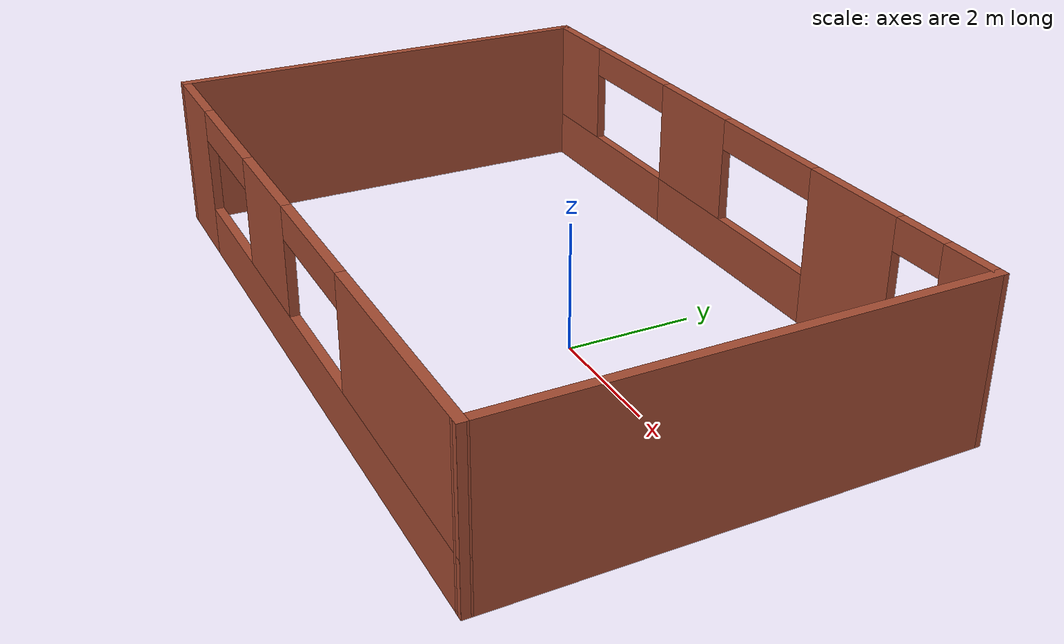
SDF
<?xml version='1.0'?>
<sdf version='1.6'>
  <model name='classroom'>
    <pose frame=''>-1.194 -0.073 0 0 -0 0</pose>
    <link name='Wall_1'>
      <pose frame=''>0.0155 -3.594 0 0 -0 0</pose>
      <visual name='Wall_1_Visual_0'>
        <pose frame=''>-4.96887 0 1.25 0 -0 0</pose>
        <geometry>
          <box>
            <size>1.5749 0.15 2.5</size>
          </box>
        </geometry>
        <material>
          <script>
            <uri>file://media/materials/scripts/gazebo.material</uri>
            <name>Gazebo/Bricks</name>
          </script>
          <ambient>1 1 1 1</ambient>
        </material>
        <meta>
          <layer>0</layer>
        </meta>
      </visual>
      <collision name='Wall_1_Collision_0'>
        <geometry>
          <box>
            <size>1.5749 0.15 2.5</size>
          </box>
        </geometry>
        <pose frame=''>-4.96887 0 1.25 0 -0 0</pose>
      </collision>
      <visual name='Wall_1_Visual_1'>
        <pose frame=''>0.787451 0 0.4 0 -0 0</pose>
        <geometry>
          <box>
            <size>9.93773 0.15 0.8</size>
          </box>
        </geometry>
        <material>
          <script>
            <uri>file://media/materials/scripts/gazebo.material</uri>
            <name>Gazebo/Bricks</name>
          </script>
          <ambient>1 1 1 1</ambient>
        </material>
        <meta>
          <layer>0</layer>
        </meta>
      </visual>
      <collision name='Wall_1_Collision_1'>
        <geometry>
          <box>
            <size>9.93773 0.15 0.8</size>
          </box>
        </geometry>
        <pose frame=''>0.787451 0 0.4 0 -0 0</pose>
      </collision>
      <visual name='Wall_1_Visual_2'>
        <pose frame=''>-1.04716 0 1.65 0 -0 0</pose>
        <geometry>
          <box>
            <size>1.8685 0.15 1.7</size>
          </box>
        </geometry>
        <material>
          <script>
            <uri>file://media/materials/scripts/gazebo.material</uri>
            <name>Gazebo/Bricks</name>
          </script>
          <ambient>1 1 1 1</ambient>
        </material>
        <meta>
          <layer>0</layer>
        </meta>
      </visual>
      <collision name='Wall_1_Collision_2'>
        <geometry>
          <box>
            <size>1.8685 0.15 1.7</size>
          </box>
        </geometry>
        <pose frame=''>-1.04716 0 1.65 0 -0 0</pose>
      </collision>
      <visual name='Wall_1_Visual_3'>
        <pose frame=''>3.9217 0 1.65 0 -0 0</pose>
        <geometry>
          <box>
            <size>3.66923 0.15 1.7</size>
          </box>
        </geometry>
        <material>
          <script>
            <uri>file://media/materials/scripts/gazebo.material</uri>
            <name>Gazebo/Bricks</name>
          </script>
          <ambient>1 1 1 1</ambient>
        </material>
        <meta>
          <layer>0</layer>
        </meta>
      </visual>
      <collision name='Wall_1_Collision_3'>
        <geometry>
          <box>
            <size>3.66923 0.15 1.7</size>
          </box>
        </geometry>
        <pose frame=''>3.9217 0 1.65 0 -0 0</pose>
      </collision>
      <visual name='Wall_1_Visual_4'>
        <pose frame=''>-3.08141 0 2.25 0 -0 0</pose>
        <geometry>
          <box>
            <size>2.2 0.15 0.5</size>
          </box>
        </geometry>
        <material>
          <script>
            <uri>file://media/materials/scripts/gazebo.material</uri>
            <name>Gazebo/Bricks</name>
          </script>
          <ambient>1 1 1 1</ambient>
        </material>
        <meta>
          <layer>0</layer>
        </meta>
      </visual>
      <collision name='Wall_1_Collision_4'>
        <geometry>
          <box>
            <size>2.2 0.15 0.5</size>
          </box>
        </geometry>
        <pose frame=''>-3.08141 0 2.25 0 -0 0</pose>
      </collision>
      <visual name='Wall_1_Visual_5'>
        <pose frame=''>0.987086 0 2.25 0 -0 0</pose>
        <geometry>
          <box>
            <size>2.2 0.15 0.5</size>
          </box>
        </geometry>
        <material>
          <script>
            <uri>file://media/materials/scripts/gazebo.material</uri>
            <name>Gazebo/Bricks</name>
          </script>
          <ambient>1 1 1 1</ambient>
        </material>
        <meta>
          <layer>0</layer>
        </meta>
      </visual>
      <collision name='Wall_1_Collision_5'>
        <geometry>
          <box>
            <size>2.2 0.15 0.5</size>
          </box>
        </geometry>
        <pose frame=''>0.987086 0 2.25 0 -0 0</pose>
      </collision>
    </link>
    <link name='Wall_2'>
      <collision name='Wall_2_Collision'>
        <geometry>
          <box>
            <size>7.3079 0.15 2.5</size>
          </box>
        </geometry>
        <pose frame=''>0 0 1.25 0 -0 0</pose>
      </collision>
      <visual name='Wall_2_Visual'>
        <pose frame=''>0 0 1.25 0 -0 0</pose>
        <geometry>
          <box>
            <size>7.3079 0.15 2.5</size>
          </box>
        </geometry>
        <material>
          <script>
            <uri>file://media/materials/scripts/gazebo.material</uri>
            <name>Gazebo/Bricks</name>
          </script>
          <ambient>1 1 1 1</ambient>
        </material>
        <meta>
          <layer>0</layer>
        </meta>
      </visual>
      <pose frame=''>5.6815 -0.015 0 0 -0 1.57513</pose>
    </link>
    <link name='Wall_3'>
      <pose frame=''>-0.0155 3.579 0 0 -0 3.13895</pose>
      <visual name='Wall_3_Visual_0'>
        <pose frame=''>-5.2624 0 1.25 0 -0 0</pose>
        <geometry>
          <box>
            <size>0.988408 0.15 2.5</size>
          </box>
        </geometry>
        <material>
          <script>
            <uri>file://media/materials/scripts/gazebo.material</uri>
            <name>Gazebo/Bricks</name>
          </script>
          <ambient>1 1 1 1</ambient>
        </material>
        <meta>
          <layer>0</layer>
        </meta>
      </visual>
      <collision name='Wall_3_Collision_0'>
        <geometry>
          <box>
            <size>0.988408 0.15 2.5</size>
          </box>
        </geometry>
        <pose frame=''>-5.2624 0 1.25 0 -0 0</pose>
      </collision>
      <visual name='Wall_3_Visual_1'>
        <pose frame=''>-2.94723 0 1.25 0 -0 0</pose>
        <geometry>
          <box>
            <size>1.84192 0.15 2.5</size>
          </box>
        </geometry>
        <material>
          <script>
            <uri>file://media/materials/scripts/gazebo.material</uri>
            <name>Gazebo/Bricks</name>
          </script>
          <ambient>1 1 1 1</ambient>
        </material>
        <meta>
          <layer>0</layer>
        </meta>
      </visual>
      <collision name='Wall_3_Collision_1'>
        <geometry>
          <box>
            <size>1.84192 0.15 2.5</size>
          </box>
        </geometry>
        <pose frame=''>-2.94723 0 1.25 0 -0 0</pose>
      </collision>
      <visual name='Wall_3_Visual_2'>
        <pose frame=''>-0.007606 0 0.4 0 -0 0</pose>
        <geometry>
          <box>
            <size>4.03733 0.15 0.8</size>
          </box>
        </geometry>
        <material>
          <script>
            <uri>file://media/materials/scripts/gazebo.material</uri>
            <name>Gazebo/Bricks</name>
          </script>
          <ambient>1 1 1 1</ambient>
        </material>
        <meta>
          <layer>0</layer>
        </meta>
      </visual>
      <collision name='Wall_3_Collision_2'>
        <geometry>
          <box>
            <size>4.03733 0.15 0.8</size>
          </box>
        </geometry>
        <pose frame=''>-0.007606 0 0.4 0 -0 0</pose>
      </collision>
      <visual name='Wall_3_Visual_3'>
        <pose frame=''>3.88383 0 0.4 0 -0 0</pose>
        <geometry>
          <box>
            <size>3.74554 0.15 0.8</size>
          </box>
        </geometry>
        <material>
          <script>
            <uri>file://media/materials/scripts/gazebo.material</uri>
            <name>Gazebo/Bricks</name>
          </script>
          <ambient>1 1 1 1</ambient>
        </material>
        <meta>
          <layer>0</layer>
        </meta>
      </visual>
      <collision name='Wall_3_Collision_3'>
        <geometry>
          <box>
            <size>3.74554 0.15 0.8</size>
          </box>
        </geometry>
        <pose frame=''>3.88383 0 0.4 0 -0 0</pose>
      </collision>
      <visual name='Wall_3_Visual_4'>
        <pose frame=''>4.98383 0 1.65 0 -0 0</pose>
        <geometry>
          <box>
            <size>1.54554 0.15 1.7</size>
          </box>
        </geometry>
        <material>
          <script>
            <uri>file://media/materials/scripts/gazebo.material</uri>
            <name>Gazebo/Bricks</name>
          </script>
          <ambient>1 1 1 1</ambient>
        </material>
        <meta>
          <layer>0</layer>
        </meta>
      </visual>
      <collision name='Wall_3_Collision_4'>
        <geometry>
          <box>
            <size>1.54554 0.15 1.7</size>
          </box>
        </geometry>
        <pose frame=''>4.98383 0 1.65 0 -0 0</pose>
      </collision>
      <visual name='Wall_3_Visual_5'>
        <pose frame=''>1.09239 0 1.65 0 -0 0</pose>
        <geometry>
          <box>
            <size>1.83733 0.15 1.7</size>
          </box>
        </geometry>
        <material>
          <script>
            <uri>file://media/materials/scripts/gazebo.material</uri>
            <name>Gazebo/Bricks</name>
          </script>
          <ambient>1 1 1 1</ambient>
        </material>
        <meta>
          <layer>0</layer>
        </meta>
      </visual>
      <collision name='Wall_3_Collision_5'>
        <geometry>
          <box>
            <size>1.83733 0.15 1.7</size>
          </box>
        </geometry>
        <pose frame=''>1.09239 0 1.65 0 -0 0</pose>
      </collision>
      <visual name='Wall_3_Visual_6'>
        <pose frame=''>1.09239 0 1.65 0 -0 0</pose>
        <geometry>
          <box>
            <size>1.83733 0.15 1.7</size>
          </box>
        </geometry>
        <material>
          <script>
            <uri>file://media/materials/scripts/gazebo.material</uri>
            <name>Gazebo/Bricks</name>
          </script>
          <ambient>1 1 1 1</ambient>
        </material>
        <meta>
          <layer>0</layer>
        </meta>
      </visual>
      <collision name='Wall_3_Collision_6'>
        <geometry>
          <box>
            <size>1.83733 0.15 1.7</size>
          </box>
        </geometry>
        <pose frame=''>1.09239 0 1.65 0 -0 0</pose>
      </collision>
      <visual name='Wall_3_Visual_7'>
        <pose frame=''>3.11106 0 2.25 0 -0 0</pose>
        <geometry>
          <box>
            <size>2.2 0.15 0.5</size>
          </box>
        </geometry>
        <material>
          <script>
            <uri>file://media/materials/scripts/gazebo.material</uri>
            <name>Gazebo/Bricks</name>
          </script>
          <ambient>1 1 1 1</ambient>
        </material>
        <meta>
          <layer>0</layer>
        </meta>
      </visual>
      <collision name='Wall_3_Collision_7'>
        <geometry>
          <box>
            <size>2.2 0.15 0.5</size>
          </box>
        </geometry>
        <pose frame=''>3.11106 0 2.25 0 -0 0</pose>
      </collision>
      <visual name='Wall_3_Visual_8'>
        <pose frame=''>3.11106 0 2.25 0 -0 0</pose>
        <geometry>
          <box>
            <size>2.2 0.15 0.5</size>
          </box>
        </geometry>
        <material>
          <script>
            <uri>file://media/materials/scripts/gazebo.material</uri>
            <name>Gazebo/Bricks</name>
          </script>
          <ambient>1 1 1 1</ambient>
        </material>
        <meta>
          <layer>0</layer>
        </meta>
      </visual>
      <collision name='Wall_3_Collision_8'>
        <geometry>
          <box>
            <size>2.2 0.15 0.5</size>
          </box>
        </geometry>
        <pose frame=''>3.11106 0 2.25 0 -0 0</pose>
      </collision>
      <visual name='Wall_3_Visual_9'>
        <pose frame=''>-4.31819 0 2.25 0 -0 0</pose>
        <geometry>
          <box>
            <size>0.9 0.15 0.5</size>
          </box>
        </geometry>
        <material>
          <script>
            <uri>file://media/materials/scripts/gazebo.material</uri>
            <name>Gazebo/Bricks</name>
          </script>
          <ambient>1 1 1 1</ambient>
        </material>
        <meta>
          <layer>0</layer>
        </meta>
      </visual>
      <collision name='Wall_3_Collision_9'>
        <geometry>
          <box>
            <size>0.9 0.15 0.5</size>
          </box>
        </geometry>
        <pose frame=''>-4.31819 0 2.25 0 -0 0</pose>
      </collision>
      <visual name='Wall_3_Visual_10'>
        <pose frame=''>-0.926271 0 2.25 0 -0 0</pose>
        <geometry>
          <box>
            <size>2.2 0.15 0.5</size>
          </box>
        </geometry>
        <material>
          <script>
            <uri>file://media/materials/scripts/gazebo.material</uri>
            <name>Gazebo/Bricks</name>
          </script>
          <ambient>1 1 1 1</ambient>
        </material>
        <meta>
          <layer>0</layer>
        </meta>
      </visual>
      <collision name='Wall_3_Collision_10'>
        <geometry>
          <box>
            <size>2.2 0.15 0.5</size>
          </box>
        </geometry>
        <pose frame=''>-0.926271 0 2.25 0 -0 0</pose>
      </collision>
    </link>
    <link name='Wall_4'>
      <collision name='Wall_4_Collision'>
        <geometry>
          <box>
            <size>7.33871 0.15 2.5</size>
          </box>
        </geometry>
        <pose frame=''>0 0 1.25 0 -0 0</pose>
      </collision>
      <visual name='Wall_4_Visual'>
        <pose frame=''>0 0 1.25 0 -0 0</pose>
        <geometry>
          <box>
            <size>7.33871 0.15 2.5</size>
          </box>
        </geometry>
        <material>
          <script>
            <uri>file://media/materials/scripts/gazebo.material</uri>
            <name>Gazebo/Bricks</name>
          </script>
          <ambient>1 1 1 1</ambient>
        </material>
        <meta>
          <layer>0</layer>
        </meta>
      </visual>
      <pose frame=''>-5.6815 -0 0 0 -0 -1.56648</pose>
    </link>
    <static>1</static>
  </model>
</sdf>
